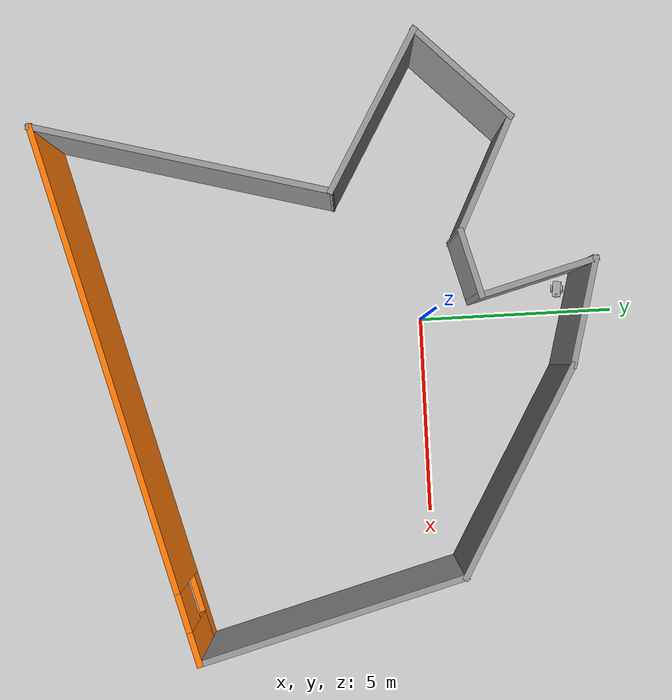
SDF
<sdf version="1.7">
 <world name="default">
  <plugin name="hello" filename="libhello.so"/>
  <light name="sun" type="directional">
   <pose>0 0 10 0 -0 0</pose>
   <diffuse>0.8 0.8 0.8 1</diffuse>
   <specular>0.2 0.2 0.2 1</specular>
   <attenuation>
    <range>1000</range>
    <constant>0.9</constant>
    <linear>0.01</linear>
    <quadratic>0.001</quadratic>
   </attenuation>
   <direction>-0.5 0.1 -0.9</direction>
   <spot><inner_angle>0</inner_angle><outer_angle>0</outer_angle><falloff>0</falloff></spot>
  </light>
  <model name="ground_plane">
   <static>1</static>
   <link name="link">
    <collision name="collision">
     <geometry><plane><normal>0 0 1</normal><size>100 100</size></plane></geometry>
     <surface>
      <contact><collide_bitmask>65535</collide_bitmask></contact>
      <friction><ode><mu>100</mu><mu2>50</mu2></ode></friction>
     </surface>
    </collision>
    <visual name="visual">
     <cast_shadows>0</cast_shadows>
     <geometry><plane><normal>0 0 1</normal><size>100 100</size></plane></geometry>
     <material>
      <script><uri>file://media/materials/scripts/gazebo.material</uri><name>Gazebo/Grey</name></script>
     </material>
    </visual>
   </link>
  </model>
  <gravity>0 0 -9.8</gravity>
  <magnetic_field>6e-06 2.3e-05 -4.2e-05</magnetic_field>
  <atmosphere type="adiabatic"/>
  <physics type="ode">
   <max_step_size>0.001</max_step_size>
   <real_time_factor>1</real_time_factor>
   <real_time_update_rate>1000</real_time_update_rate>
  </physics>
  <scene><ambient>0.4 0.4 0.4 1</ambient><background>0.7 0.7 0.7 1</background><shadows>1</shadows></scene>
  <spherical_coordinates>
   <surface_model>EARTH_WGS84</surface_model>
   <latitude_deg>0</latitude_deg>
   <longitude_deg>0</longitude_deg>
   <elevation>0</elevation>
   <heading_deg>0</heading_deg>
  </spherical_coordinates>
  <model name="Untitled">
   <pose>0.56233 -2.59093 0 0 -0 0</pose>
   <link name="Wall_0">
    <collision name="Wall_0_Collision">
     <geometry><box><size>3.25 0.15 2.5</size></box></geometry>
     <pose>0 0 1.25 0 -0 0</pose>
    </collision>
    <visual name="Wall_0_Visual">
     <pose>0 0 1.25 0 -0 0</pose>
     <geometry><box><size>3.25 0.15 2.5</size></box></geometry>
     <material>
      <script><uri>file://media/materials/scripts/gazebo.material</uri><name>Gazebo/Grey</name></script>
      <ambient>1 1 1 1</ambient>
     </material>
     <meta><layer>0</layer></meta>
    </visual>
    <pose>-6.27688 3.71893 0 0 -0 -2.35619</pose>
   </link>
   <link name="Wall_1">
    <collision name="Wall_1_Collision">
     <geometry><box><size>4.5 0.15 2.5</size></box></geometry>
     <pose>0 0 1.25 0 -0 0</pose>
    </collision>
    <visual name="Wall_1_Visual">
     <pose>0 0 1.25 0 -0 0</pose>
     <geometry><box><size>4.5 0.15 2.5</size></box></geometry>
     <material>
      <script><uri>file://media/materials/scripts/gazebo.material</uri><name>Gazebo/Grey</name></script>
      <ambient>1 1 1 1</ambient>
     </material>
     <meta><layer>0</layer></meta>
    </visual>
    <pose>-5.48929 1.53542 0 0 -0 -0.523599</pose>
   </link>
   <link name="Wall_2">
    <collision name="Wall_2_Collision">
     <geometry><box><size>7.5 0.15 2.5</size></box></geometry>
     <pose>0 0 1.25 0 -0 0</pose>
    </collision>
    <visual name="Wall_2_Visual">
     <pose>0 0 1.25 0 -0 0</pose>
     <geometry><box><size>7.5 0.15 2.5</size></box></geometry>
     <material>
      <script><uri>file://media/materials/scripts/gazebo.material</uri><name>Gazebo/Grey</name></script>
      <ambient>1 1 1 1</ambient>
     </material>
     <meta><layer>0</layer></meta>
    </visual>
    <pose>-4.55684 -3.10186 0 0 -0 -1.8326</pose>
   </link>
   <link name="Wall_3">
    <pose>0.939551 -4.92402 0 0 -0 0.261799</pose>
    <visual name="Wall_3_Visual_0">
     <pose>-0.895801 0 1.25 0 -0 0</pose>
     <geometry><box><size>11.7084 0.15 2.5</size></box></geometry>
     <material>
      <script><uri>file://media/materials/scripts/gazebo.material</uri><name>Gazebo/Grey</name></script>
      <ambient>0.996078 0.47451 0.0196078 1</ambient>
     </material>
     <meta><layer>0</layer></meta>
    </visual>
    <collision name="Wall_3_Collision_0">
     <geometry><box><size>11.7084 0.15 2.5</size></box></geometry>
     <pose>-0.895801 0 1.25 0 -0 0</pose>
    </collision>
    <visual name="Wall_3_Visual_1">
     <pose>5.8542 0 0.25 0 -0 0</pose>
     <geometry><box><size>1.7916 0.15 0.5</size></box></geometry>
     <material>
      <script><uri>file://media/materials/scripts/gazebo.material</uri><name>Gazebo/Grey</name></script>
      <ambient>0.996078 0.47451 0.0196078 1</ambient>
     </material>
     <meta><layer>0</layer></meta>
    </visual>
    <collision name="Wall_3_Collision_1">
     <geometry><box><size>1.7916 0.15 0.5</size></box></geometry>
     <pose>5.8542 0 0.25 0 -0 0</pose>
    </collision>
    <visual name="Wall_3_Visual_2">
     <pose>6.32604 0 1.5 0 -0 0</pose>
     <geometry><box><size>0.847917 0.15 2</size></box></geometry>
     <material>
      <script><uri>file://media/materials/scripts/gazebo.material</uri><name>Gazebo/Grey</name></script>
      <ambient>0.996078 0.47451 0.0196078 1</ambient>
     </material>
     <meta><layer>0</layer></meta>
    </visual>
    <collision name="Wall_3_Collision_2">
     <geometry><box><size>0.847917 0.15 2</size></box></geometry>
     <pose>6.32604 0 1.5 0 -0 0</pose>
    </collision>
    <visual name="Wall_3_Visual_3">
     <pose>5.43024 0 1.9 0 -0 0</pose>
     <geometry><box><size>0.943685 0.15 1.2</size></box></geometry>
     <material>
      <script><uri>file://media/materials/scripts/gazebo.material</uri><name>Gazebo/Grey</name></script>
      <ambient>0.996078 0.47451 0.0196078 1</ambient>
     </material>
     <meta><layer>0</layer></meta>
    </visual>
    <collision name="Wall_3_Collision_3">
     <geometry><box><size>0.943685 0.15 1.2</size></box></geometry>
     <pose>5.43024 0 1.9 0 -0 0</pose>
    </collision>
   </link>
   <link name="Wall_4">
    <collision name="Wall_4_Collision">
     <geometry><box><size>6.75 0.15 2.5</size></box></geometry>
     <pose>0 0 1.25 0 -0 0</pose>
    </collision>
    <visual name="Wall_4_Visual">
     <pose>0 0 1.25 0 -0 0</pose>
     <geometry><box><size>6.75 0.15 2.5</size></box></geometry>
     <material>
      <script><uri>file://media/materials/scripts/gazebo.material</uri><name>Gazebo/Grey</name></script>
      <ambient>1 1 1 1</ambient>
     </material>
     <meta><layer>0</layer></meta>
    </visual>
    <pose>6.533 -0.008848 0 0 -0 1.8326</pose>
   </link>
   <link name="Wall_5">
    <collision name="Wall_5_Collision">
     <geometry><box><size>5.75 0.15 2.5</size></box></geometry>
     <pose>0 0 1.25 0 -0 0</pose>
    </collision>
    <visual name="Wall_5_Visual">
     <pose>0 0 1.25 0 -0 0</pose>
     <geometry><box><size>5.75 0.15 2.5</size></box></geometry>
     <material>
      <script><uri>file://media/materials/scripts/gazebo.material</uri><name>Gazebo/Grey</name></script>
      <ambient>1 1 1 1</ambient>
     </material>
     <meta><layer>0</layer></meta>
    </visual>
    <pose>3.25403 4.57871 0 0 -0 2.61799</pose>
   </link>
   <link name="Wall_6">
    <collision name="Wall_6_Collision">
     <geometry><box><size>2.75 0.15 2.5</size></box></geometry>
     <pose>0 0 1.25 0 -0 0</pose>
    </collision>
    <visual name="Wall_6_Visual">
     <pose>0 0 1.25 0 -0 0</pose>
     <geometry><box><size>2.75 0.15 2.5</size></box></geometry>
     <material>
      <script><uri>file://media/materials/scripts/gazebo.material</uri><name>Gazebo/Grey</name></script>
      <ambient>1 1 1 1</ambient>
     </material>
     <meta><layer>0</layer></meta>
    </visual>
    <pose>-0.426546 6.31517 0 0 -0 2.87979</pose>
   </link>
   <link name="Wall_7">
    <collision name="Wall_7_Collision">
     <geometry><box><size>3 0.15 2.5</size></box></geometry>
     <pose>0 0 1.25 0 -0 0</pose>
    </collision>
    <visual name="Wall_7_Visual">
     <pose>0 0 1.25 0 -0 0</pose>
     <geometry><box><size>3 0.15 2.5</size></box></geometry>
     <material>
      <script><uri>file://media/materials/scripts/gazebo.material</uri><name>Gazebo/Grey</name></script>
      <ambient>1 1 1 1</ambient>
     </material>
     <meta><layer>0</layer></meta>
    </visual>
    <pose>-1.31343 5.27519 0 0 -0 -1.309</pose>
   </link>
   <link name="Wall_8">
    <collision name="Wall_8_Collision">
     <geometry><box><size>1.75 0.15 2.5</size></box></geometry>
     <pose>0 0 1.25 0 -0 0</pose>
    </collision>
    <visual name="Wall_8_Visual">
     <pose>0 0 1.25 0 -0 0</pose>
     <geometry><box><size>1.75 0.15 2.5</size></box></geometry>
     <material>
      <script><uri>file://media/materials/scripts/gazebo.material</uri><name>Gazebo/Grey</name></script>
      <ambient>1 1 1 1</ambient>
     </material>
     <meta><layer>0</layer></meta>
    </visual>
    <pose>-1.71736 3.69169 0 0 -0 -2.87979</pose>
   </link>
   <link name="Wall_9">
    <collision name="Wall_9_Collision">
     <geometry><box><size>3.15166 0.15 2.5</size></box></geometry>
     <pose>0 0 1.25 0 -0 0</pose>
    </collision>
    <visual name="Wall_9_Visual">
     <pose>0 0 1.25 0 -0 0</pose>
     <geometry><box><size>3.15166 0.15 2.5</size></box></geometry>
     <material>
      <script><uri>file://media/materials/scripts/gazebo.material</uri><name>Gazebo/Grey</name></script>
      <ambient>1 1 1 1</ambient>
     </material>
     <meta><layer>0</layer></meta>
    </visual>
    <pose>-3.83548 4.14979 0 0 -0 2.68244</pose>
   </link>
   <static>1</static>
  </model>
  <model name="my_robot">
   <link name="robot_footprint">
    <inertial>
     <pose>0.002303 0 0.000658 0 -0 0</pose>
     <mass>15.2</mass>
     <inertia>
      <ixx>0.100995</ixx>
      <ixy>0</ixy>
      <ixz>-0.00147697</ixz>
      <iyy>0.107165</iyy>
      <iyz>0</iyz>
      <izz>0.106171</izz>
     </inertia>
    </inertial>
    <collision name="robot_footprint_fixed_joint_lump__collision_collision">
     <geometry><box><size>0.4 0.2 0.1</size></box></geometry>
    </collision>
    <collision name="robot_footprint_fixed_joint_lump__back_caster_collision_collision_1">
     <pose>-0.15 0 -0.05 0 -0 0</pose>
     <geometry><sphere><radius>0.0499</radius></sphere></geometry>
    </collision>
    <collision name="robot_footprint_fixed_joint_lump__front_caster_collision_collision_2">
     <pose>0.15 0 -0.05 0 -0 0</pose>
     <geometry><sphere><radius>0.0499</radius></sphere></geometry>
    </collision>
    <collision name="robot_footprint_fixed_joint_lump__camera_collision_3">
     <pose>0.2 0 0 0 -0 0</pose>
     <geometry><box><size>0.05 0.05 0.05</size></box></geometry>
    </collision>
    <collision name="robot_footprint_fixed_joint_lump__hokuyo_collision_4">
     <pose>0.15 0 0.1 0 -0 0</pose>
     <geometry><box><size>0.05 0.05 0.05</size></box></geometry>
    </collision>
    <visual name="robot_footprint_fixed_joint_lump__chassis_visual_visual">
     <geometry><box><size>0.4 0.2 0.1</size></box></geometry>
    </visual>
    <visual name="robot_footprint_fixed_joint_lump__back_caster_visual_visual_1">
     <pose>-0.15 0 -0.05 0 -0 0</pose>
     <geometry><sphere><radius>0.05</radius></sphere></geometry>
    </visual>
    <visual name="robot_footprint_fixed_joint_lump__front_caster_visual_visual_2">
     <pose>0.15 0 -0.05 0 -0 0</pose>
     <geometry><sphere><radius>0.05</radius></sphere></geometry>
    </visual>
    <visual name="robot_footprint_fixed_joint_lump__camera_visual_3">
     <pose>0.2 0 0 0 -0 0</pose>
     <geometry><box><size>0.05 0.05 0.05</size></box></geometry>
    </visual>
    <visual name="robot_footprint_fixed_joint_lump__hokuyo_visual_4">
     <pose>0.15 0 0.1 0 -0 0</pose>
     <geometry><box><size>0.05 0.05 0.05</size></box></geometry>
    </visual>
    <sensor name="camera1" type="camera">
     <update_rate>30</update_rate>
     <camera name="head">
      <horizontal_fov>1.39626</horizontal_fov>
      <image><width>800</width><height>800</height><format>R8G8B8</format></image>
      <clip><near>0.02</near><far>300</far></clip>
     </camera>
     <plugin name="camera_controller" filename="libgazebo_ros_camera.so">
      <alwaysOn>1</alwaysOn>
      <updateRate>0.0</updateRate>
      <cameraName>camera</cameraName>
      <imageTopicName>rgb/image_raw</imageTopicName>
      <cameraInfoTopicName>rgb/camera_info</cameraInfoTopicName>
      <frameName>camera</frameName>
      <hackBaseline>0.07</hackBaseline>
      <distortionK1>0.0</distortionK1>
      <distortionK2>0.0</distortionK2>
      <distortionK3>0.0</distortionK3>
      <distortionT1>0.0</distortionT1>
      <distortionT2>0.0</distortionT2>
      <robotNamespace>/</robotNamespace>
     </plugin>
     <pose>0.2 0 0 0 -0 0</pose>
    </sensor>
    <sensor name="head_hokuyo_sensor" type="ray">
     <visualize>0</visualize>
     <update_rate>40</update_rate>
     <ray>
      <scan>
       <horizontal>
        <samples>720</samples>
        <resolution>1</resolution>
        <min_angle>-1.5708</min_angle>
        <max_angle>1.5708</max_angle>
       </horizontal>
       <vertical><samples>1</samples><min_angle>0</min_angle><max_angle>0</max_angle></vertical>
      </scan>
      <range><min>0.1</min><max>30</max><resolution>0.01</resolution></range>
      <noise><type>gaussian</type><mean>0</mean><stddev>0.01</stddev></noise>
     </ray>
     <plugin name="gazebo_ros_head_hokuyo_controller" filename="libgazebo_ros_laser.so">
      <topicName>/scan</topicName>
      <frameName>hokuyo</frameName>
      <robotNamespace>/</robotNamespace>
     </plugin>
     <pose>0.15 0 0.1 0 -0 0</pose>
    </sensor>
   </link>
   <joint name="left_wheel_hinge" type="revolute">
    <pose relative_to="robot_footprint">0 -0.13 0 0 -0 0</pose>
    <parent>robot_footprint</parent>
    <child>left_wheel</child>
    <axis>
     <xyz>0 0.12 0</xyz>
     <limit><effort>10000</effort><velocity>1000</velocity><lower>-1e+16</lower><upper>1e+16</upper></limit>
     <dynamics>
      <damping>1</damping>
      <friction>1</friction>
      <spring_reference>0</spring_reference>
      <spring_stiffness>0</spring_stiffness>
     </dynamics>
    </axis>
   </joint>
   <link name="left_wheel">
    <pose relative_to="left_wheel_hinge">0 0 0 0 -0 0</pose>
    <inertial>
     <pose>0 0 0 -0 1.5707 1.5707</pose>
     <mass>5</mass>
     <inertia><ixx>0.1</ixx><ixy>0</ixy><ixz>0</ixz><iyy>0.1</iyy><iyz>0</iyz><izz>0.1</izz></inertia>
    </inertial>
    <collision name="left_wheel_collision">
     <geometry><cylinder><length>0.05</length><radius>0.1</radius></cylinder></geometry>
    </collision>
    <visual name="left_wheel_visual">
     <pose>0 0 0 1.5707 -0 0</pose>
     <geometry><cylinder><length>0.05</length><radius>0.1</radius></cylinder></geometry>
    </visual>
   </link>
   <joint name="right_wheel_hinge" type="revolute">
    <pose relative_to="robot_footprint">0 0.13 0 0 -0 0</pose>
    <parent>robot_footprint</parent>
    <child>right_wheel</child>
    <axis>
     <xyz>0 0.12 0</xyz>
     <limit><effort>10000</effort><velocity>1000</velocity><lower>-1e+16</lower><upper>1e+16</upper></limit>
     <dynamics>
      <damping>1</damping>
      <friction>1</friction>
      <spring_reference>0</spring_reference>
      <spring_stiffness>0</spring_stiffness>
     </dynamics>
    </axis>
   </joint>
   <link name="right_wheel">
    <pose relative_to="right_wheel_hinge">0 0 0 0 -0 0</pose>
    <inertial>
     <mass>5</mass>
     <inertia><ixx>0.1</ixx><ixy>0</ixy><ixz>0</ixz><iyy>0.1</iyy><iyz>0</iyz><izz>0.1</izz></inertia>
    </inertial>
    <collision name="right_wheel_collision">
     <geometry><cylinder><length>0.05</length><radius>0.1</radius></cylinder></geometry>
    </collision>
    <visual name="right_wheel_visual">
     <pose>0 0 0 1.5707 -0 0</pose>
     <geometry><cylinder><length>0.05</length><radius>0.1</radius></cylinder></geometry>
    </visual>
   </link>
   <plugin name="differential_drive_controller" filename="libgazebo_ros_diff_drive.so">
    <legacyMode>0</legacyMode>
    <alwaysOn>1</alwaysOn>
    <updateRate>10</updateRate>
    <leftJoint>left_wheel_hinge</leftJoint>
    <rightJoint>right_wheel_hinge</rightJoint>
    <wheelSeparation>0.4</wheelSeparation>
    <wheelDiameter>0.2</wheelDiameter>
    <torque>10</torque>
    <commandTopic>cmd_vel</commandTopic>
    <odometryTopic>odom</odometryTopic>
    <odometryFrame>odom</odometryFrame>
    <robotBaseFrame>robot_footprint</robotBaseFrame>
    <publishWheelTF>0</publishWheelTF>
    <publishWheelJointState>0</publishWheelJointState>
    <rosDebugLevel>na</rosDebugLevel>
    <wheelAcceleration>0</wheelAcceleration>
    <wheelTorque>5</wheelTorque>
    <odometrySource>world</odometrySource>
    <publishTf>1</publishTf>
    <publishOdomTF>1</publishOdomTF>
    <robotNamespace>/</robotNamespace>
   </plugin>
   <frame name="camera_joint" attached_to="chassis"><pose>0.2 0 0 0 -0 0</pose></frame>
   <frame name="camera" attached_to="camera_joint"/>
   <frame name="hokuyo_joint" attached_to="chassis"><pose>0.15 0 0.1 0 -0 0</pose></frame>
   <frame name="hokuyo" attached_to="hokuyo_joint"/>
   <frame name="robot_footprint_joint" attached_to="robot_footprint"/>
   <frame name="chassis" attached_to="robot_footprint_joint"/>
   <pose>-0.603713 3.61194 0.097272 0.32564 2e-06 -0.112403</pose>
  </model>
 </world>
</sdf>
